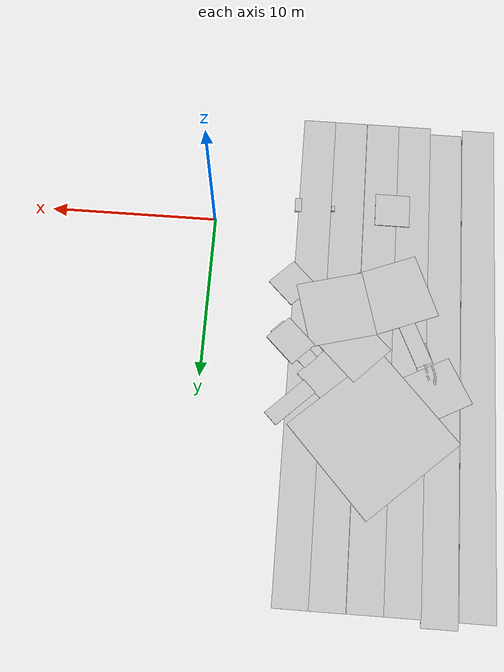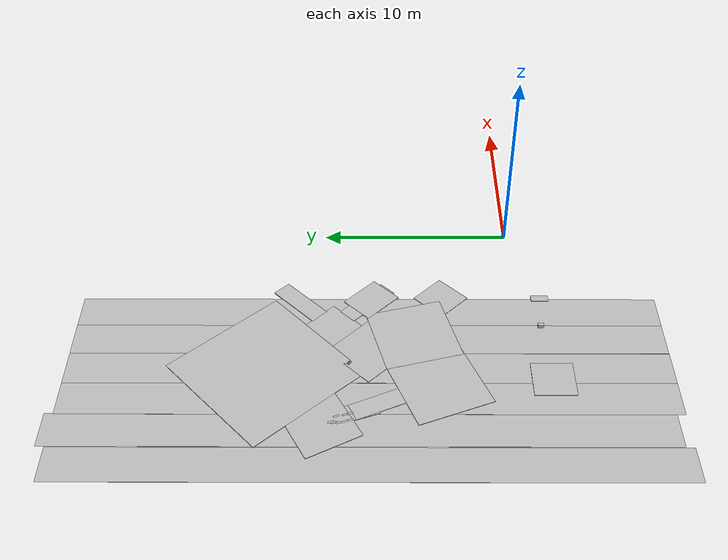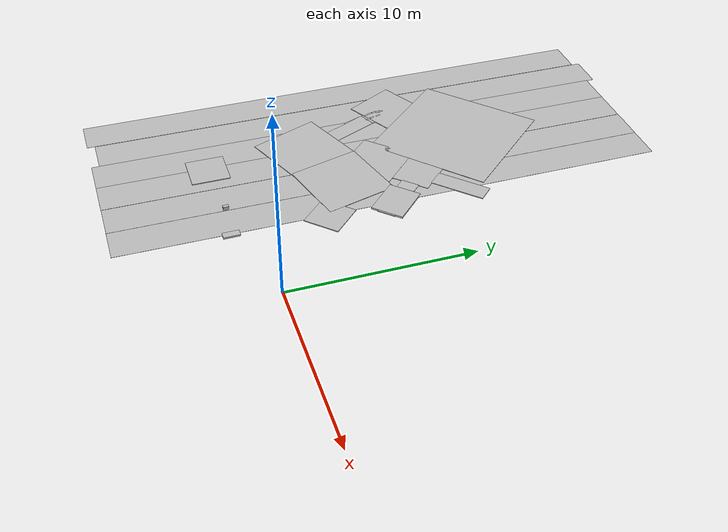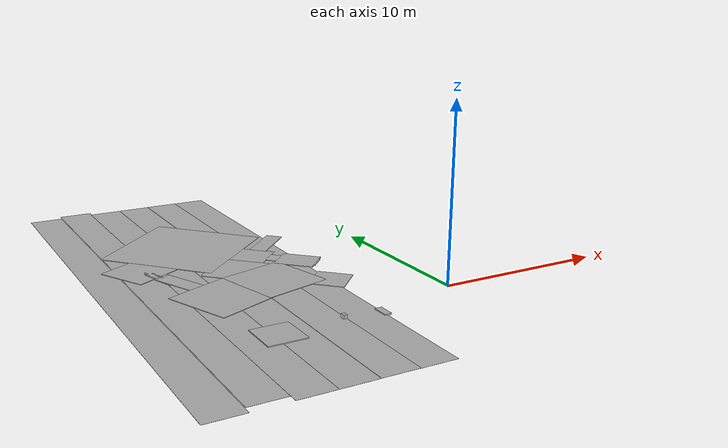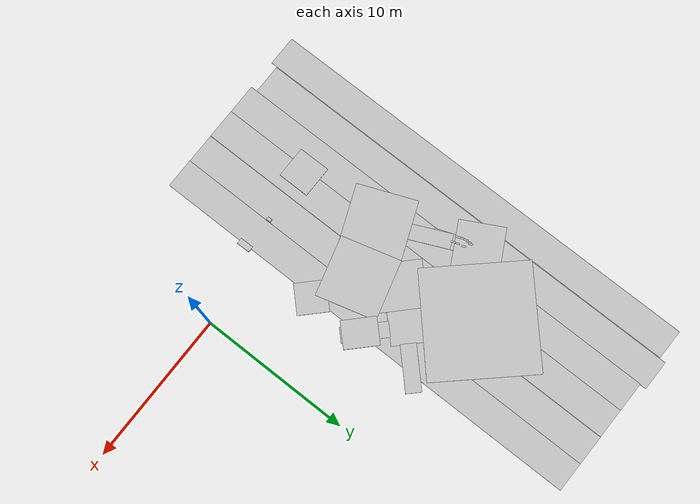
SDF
<sdf version="1.6">
 <world name="default">
  <model name="stop_crossing">
   <static>1</static>
   <link name="link">
    <collision name="collision">
     <geometry><box><size>2.1 2.1 0.05</size></box></geometry>
     <surface><friction><ode><mu>100</mu><mu2>50</mu2></ode></friction></surface>
    </collision>
    <visual name="visual">
     <cast_shadows>0</cast_shadows>
     <geometry><box><size>2.1 2.1 0.05</size></box></geometry>
     <material>
      <script>
       <uri>model://stop_crossing/materials/scripts</uri>
       <uri>model://stop_crossing/materials/textures/</uri>
       <name>stop_crossing/Image</name>
      </script>
     </material>
    </visual>
   </link>
   <pose>-7.10184 9.42657 0 0 -0 0.789918</pose>
  </model>
  <model name="straight_300_o_25">
   <static>1</static>
   <link name="link">
    <collision name="collision">
     <geometry><box><size>3 1 0.05</size></box></geometry>
     <surface><friction><ode><mu>100</mu><mu2>50</mu2></ode></friction></surface>
    </collision>
    <visual name="visual">
     <cast_shadows>0</cast_shadows>
     <geometry><box><size>3 1 0.05</size></box></geometry>
     <material>
      <script>
       <uri>model://straight_300_o_25/materials/scripts</uri>
       <uri>model://straight_300_o_25/materials/textures/</uri>
       <name>straight_300_o_25/Image</name>
      </script>
     </material>
    </visual>
   </link>
   <pose>-5.32382 11.1876 0.001 0 -0 0.774294</pose>
  </model>
  <model name="straight_300_o_25_0">
   <static>1</static>
   <link name="link">
    <collision name="collision">
     <geometry><box><size>3 1 0.05</size></box></geometry>
     <surface><friction><ode><mu>100</mu><mu2>50</mu2></ode></friction></surface>
    </collision>
    <visual name="visual">
     <cast_shadows>0</cast_shadows>
     <geometry><box><size>3 1 0.05</size></box></geometry>
     <material>
      <script>
       <uri>model://straight_300_o_25/materials/scripts</uri>
       <uri>model://straight_300_o_25/materials/textures/</uri>
       <name>straight_300_o_25/Image</name>
      </script>
     </material>
    </visual>
   </link>
   <pose>-5.32432 7.66399 0.00145 0 0 -0.781825</pose>
  </model>
  <model name="left_curve_r100_a75_025">
   <static>1</static>
   <link name="link">
    <collision name="collision">
     <geometry><box><size>2 2 0.05</size></box></geometry>
     <surface><friction><ode><mu>100</mu><mu2>50</mu2></ode></friction></surface>
    </collision>
    <visual name="visual">
     <cast_shadows>0</cast_shadows>
     <geometry><box><size>2 2 0.05</size></box></geometry>
     <material>
      <script>
       <uri>model://left_curve_r100_a75_025/materials/scripts</uri>
       <uri>model://left_curve_r100_a75_025/materials/textures/</uri>
       <name>left_curve_r100_a75_025/Image</name>
      </script>
     </material>
    </visual>
   </link>
   <pose>-4.99373 3.81358 0 0 0 -0.782313</pose>
  </model>
  <model name="left_curve_r150_a60_020">
   <static>1</static>
   <link name="link">
    <collision name="collision">
     <geometry><box><size>3 3 0.05</size></box></geometry>
     <surface><friction><ode><mu>100</mu><mu2>50</mu2></ode></friction></surface>
    </collision>
    <visual name="visual">
     <cast_shadows>0</cast_shadows>
     <geometry><box><size>3 3 0.05</size></box></geometry>
     <material>
      <script>
       <uri>model://left_curve_r150_a60_020/materials/scripts</uri>
       <uri>model://left_curve_r150_a60_020/materials/textures/</uri>
       <name>left_curve_r150_a60_020/Image</name>
      </script>
     </material>
    </visual>
   </link>
   <pose>-8.89192 7.61762 0.001 0 0 -0.779843</pose>
  </model>
  <model name="right_curve_r200_a90_o20">
   <static>1</static>
   <link name="link">
    <collision name="collision">
     <geometry><box><size>4 4 0.05</size></box></geometry>
     <surface><friction><ode><mu>100</mu><mu2>50</mu2></ode></friction></surface>
    </collision>
    <visual name="visual">
     <cast_shadows>0</cast_shadows>
     <geometry><box><size>4 4 0.05</size></box></geometry>
     <material>
      <script>
       <uri>model://right_curve_r200_a90_o20/materials/scripts</uri>
       <uri>model://right_curve_r200_a90_o20/materials/textures/</uri>
       <name>right_curve_r200_a90_o20/Image</name>
      </script>
     </material>
    </visual>
   </link>
   <pose>-7.6945 5.3036 0.002 0 -0 1.83523</pose>
  </model>
  <model name="right_curve_r200_a90_o20_0">
   <static>1</static>
   <link name="link">
    <collision name="collision">
     <geometry><box><size>4 4 0.05</size></box></geometry>
     <surface><friction><ode><mu>100</mu><mu2>50</mu2></ode></friction></surface>
    </collision>
    <visual name="visual">
     <cast_shadows>0</cast_shadows>
     <geometry><box><size>4 4 0.05</size></box></geometry>
     <material>
      <script>
       <uri>model://right_curve_r200_a90_o20/materials/scripts</uri>
       <uri>model://right_curve_r200_a90_o20/materials/textures/</uri>
       <name>right_curve_r200_a90_o20/Image</name>
      </script>
     </material>
    </visual>
   </link>
   <pose>-11.1447 4.13942 0.001 0 -0 0.381381</pose>
  </model>
  <model name="right_curve_r150_a90_o30_0">
   <static>1</static>
   <link name="link">
    <collision name="collision">
     <geometry><box><size>3 3 0.05</size></box></geometry>
     <surface><friction><ode><mu>100</mu><mu2>50</mu2></ode></friction></surface>
    </collision>
    <visual name="visual">
     <cast_shadows>0</cast_shadows>
     <geometry><box><size>3 3 0.05</size></box></geometry>
     <material>
      <script>
       <uri>model://right_curve_r150_a90_o30/materials/scripts</uri>
       <uri>model://right_curve_r150_a90_o30/materials/textures/</uri>
       <name>right_curve_r150_a90_o30/Image</name>
      </script>
     </material>
    </visual>
   </link>
   <pose>-13.7237 9.88072 0 0 0 -1.08295</pose>
  </model>
  <model name="straight_300_o_25_2">
   <static>1</static>
   <link name="link">
    <collision name="collision">
     <geometry><box><size>3 1 0.05</size></box></geometry>
     <surface><friction><ode><mu>100</mu><mu2>50</mu2></ode></friction></surface>
    </collision>
    <visual name="visual">
     <cast_shadows>0</cast_shadows>
     <geometry><box><size>3 1 0.05</size></box></geometry>
     <material>
      <script>
       <uri>model://straight_300_o_25/materials/scripts</uri>
       <uri>model://straight_300_o_25/materials/textures/</uri>
       <name>straight_300_o_25/Image</name>
      </script>
     </material>
    </visual>
   </link>
   <pose>-12.3535 7.02768 -0.001 0 -0 1.99398</pose>
  </model>
  <model name="right_curve_r350_a90_o20">
   <static>1</static>
   <link name="link">
    <collision name="collision">
     <geometry><box><size>7 7 0.05</size></box></geometry>
     <surface><friction><ode><mu>100</mu><mu2>50</mu2></ode></friction></surface>
    </collision>
    <visual name="visual">
     <cast_shadows>0</cast_shadows>
     <geometry><box><size>7 7 0.05</size></box></geometry>
     <material>
      <script>
       <uri>model://right_curve_r350_a90_o20/materials/scripts</uri>
       <uri>model://right_curve_r350_a90_o20/materials/textures/</uri>
       <name>right_curve_r350_a90_o20/Image</name>
      </script>
     </material>
    </visual>
   </link>
   <pose>-10.1542 12.6944 0.001 0 0 -2.40206</pose>
  </model>
  <model name="straight_300_o_25_3">
   <static>1</static>
   <link name="link">
    <collision name="collision">
     <geometry><box><size>3 1 0.05</size></box></geometry>
     <surface><friction><ode><mu>100</mu><mu2>50</mu2></ode></friction></surface>
    </collision>
    <visual name="visual">
     <cast_shadows>0</cast_shadows>
     <geometry><box><size>3 1 0.05</size></box></geometry>
     <material>
      <script>
       <uri>model://straight_300_o_25/materials/scripts</uri>
       <uri>model://straight_300_o_25/materials/textures/</uri>
       <name>straight_300_o_25/Image</name>
      </script>
     </material>
    </visual>
   </link>
   <pose>-13.0463 8.61101 -0.002 0 -0 1.92031</pose>
  </model>
  <model name="black_tile_w200_h3000_3">
   <static>1</static>
   <link name="link">
    <collision name="collision">
     <geometry><box><size>2 30 0.01</size></box></geometry>
     <surface><friction><ode><mu>100</mu><mu2>50</mu2></ode></friction></surface>
    </collision>
    <visual name="visual">
     <cast_shadows>0</cast_shadows>
     <geometry><box><size>2 30 0.01</size></box></geometry>
     <material>
      <script>
       <uri>model://black_tile_w200_h3000/materials/scripts</uri>
       <uri>model://black_tile_w200_h3000/materials/textures/</uri>
       <name>black_tile_w200_h3000/Image</name>
      </script>
     </material>
    </visual>
   </link>
   <pose>-6.05699 7.57177 -0.006667 0 -0 0</pose>
  </model>
  <model name="black_tile_w200_h3000_4">
   <static>1</static>
   <link name="link">
    <collision name="collision">
     <geometry><box><size>2 30 0.01</size></box></geometry>
     <surface><friction><ode><mu>100</mu><mu2>50</mu2></ode></friction></surface>
    </collision>
    <visual name="visual">
     <cast_shadows>0</cast_shadows>
     <geometry><box><size>2 30 0.01</size></box></geometry>
     <material>
      <script>
       <uri>model://black_tile_w200_h3000/materials/scripts</uri>
       <uri>model://black_tile_w200_h3000/materials/textures/</uri>
       <name>black_tile_w200_h3000/Image</name>
      </script>
     </material>
    </visual>
   </link>
   <pose>-8.03771 7.57875 -0.003333 0 -0 0</pose>
  </model>
  <model name="black_tile_w200_h3000_5">
   <static>1</static>
   <link name="link">
    <collision name="collision">
     <geometry><box><size>2 30 0.01</size></box></geometry>
     <surface><friction><ode><mu>100</mu><mu2>50</mu2></ode></friction></surface>
    </collision>
    <visual name="visual">
     <cast_shadows>0</cast_shadows>
     <geometry><box><size>2 30 0.01</size></box></geometry>
     <material>
      <script>
       <uri>model://black_tile_w200_h3000/materials/scripts</uri>
       <uri>model://black_tile_w200_h3000/materials/textures/</uri>
       <name>black_tile_w200_h3000/Image</name>
      </script>
     </material>
    </visual>
   </link>
   <pose>-10.057 7.57177 -0.006667 0 -0 0</pose>
  </model>
  <model name="black_tile_w200_h3000_6">
   <static>1</static>
   <link name="link">
    <collision name="collision">
     <geometry><box><size>2 30 0.01</size></box></geometry>
     <surface><friction><ode><mu>100</mu><mu2>50</mu2></ode></friction></surface>
    </collision>
    <visual name="visual">
     <cast_shadows>0</cast_shadows>
     <geometry><box><size>2 30 0.01</size></box></geometry>
     <material>
      <script>
       <uri>model://black_tile_w200_h3000/materials/scripts</uri>
       <uri>model://black_tile_w200_h3000/materials/textures/</uri>
       <name>black_tile_w200_h3000/Image</name>
      </script>
     </material>
    </visual>
   </link>
   <pose>-12.057 7.57177 -0.01 0 -0 0</pose>
  </model>
  <model name="black_tile_w200_h3000_7">
   <static>1</static>
   <link name="link">
    <collision name="collision">
     <geometry><box><size>2 30 0.01</size></box></geometry>
     <surface><friction><ode><mu>100</mu><mu2>50</mu2></ode></friction></surface>
    </collision>
    <visual name="visual">
     <cast_shadows>0</cast_shadows>
     <geometry><box><size>2 30 0.01</size></box></geometry>
     <material>
      <script>
       <uri>model://black_tile_w200_h3000/materials/scripts</uri>
       <uri>model://black_tile_w200_h3000/materials/textures/</uri>
       <name>black_tile_w200_h3000/Image</name>
      </script>
     </material>
    </visual>
   </link>
   <pose>-14.018 7.99836 -0.013333 0 -0 0</pose>
  </model>
  <model name="black_tile_w200_h3000_8">
   <static>1</static>
   <link name="link">
    <collision name="collision">
     <geometry><box><size>2 30 0.01</size></box></geometry>
     <surface><friction><ode><mu>100</mu><mu2>50</mu2></ode></friction></surface>
    </collision>
    <visual name="visual">
     <cast_shadows>0</cast_shadows>
     <geometry><box><size>2 30 0.01</size></box></geometry>
     <material>
      <script>
       <uri>model://black_tile_w200_h3000/materials/scripts</uri>
       <uri>model://black_tile_w200_h3000/materials/textures/</uri>
       <name>black_tile_w200_h3000/Image</name>
      </script>
     </material>
    </visual>
   </link>
   <pose>-16.057 7.57177 -0.016667 0 -0 0</pose>
  </model>
  <model name="line_remove_3">
   <static>1</static>
   <link name="link">
    <collision name="collision">
     <geometry><box><size>0.1 0.3 0.01</size></box></geometry>
     <surface><friction><ode><mu>100</mu><mu2>50</mu2></ode></friction></surface>
    </collision>
    <visual name="visual">
     <cast_shadows>0</cast_shadows>
     <geometry><box><size>0.1 0.3 0.01</size></box></geometry>
     <material>
      <script>
       <uri>model://line_remove/materials/scripts</uri>
       <uri>model://line_remove/materials/textures/</uri>
       <name>line_remove/Image</name>
      </script>
     </material>
    </visual>
   </link>
   <pose>-13.0898 8.72684 0.021036 0 -0 0.359211</pose>
  </model>
  <model name="line_remove_4">
   <static>1</static>
   <link name="link">
    <collision name="collision">
     <geometry><box><size>0.1 0.3 0.01</size></box></geometry>
     <surface><friction><ode><mu>100</mu><mu2>50</mu2></ode></friction></surface>
    </collision>
    <visual name="visual">
     <cast_shadows>0</cast_shadows>
     <geometry><box><size>0.1 0.3 0.01</size></box></geometry>
     <material>
      <script>
       <uri>model://line_remove/materials/scripts</uri>
       <uri>model://line_remove/materials/textures/</uri>
       <name>line_remove/Image</name>
      </script>
     </material>
    </visual>
   </link>
   <pose>-13.1913 9.13982 0.021036 0 -0 0.359211</pose>
  </model>
  <model name="line_remove_5">
   <static>1</static>
   <link name="link">
    <collision name="collision">
     <geometry><box><size>0.1 0.3 0.01</size></box></geometry>
     <surface><friction><ode><mu>100</mu><mu2>50</mu2></ode></friction></surface>
    </collision>
    <visual name="visual">
     <cast_shadows>0</cast_shadows>
     <geometry><box><size>0.1 0.3 0.01</size></box></geometry>
     <material>
      <script>
       <uri>model://line_remove/materials/scripts</uri>
       <uri>model://line_remove/materials/textures/</uri>
       <name>line_remove/Image</name>
      </script>
     </material>
    </visual>
   </link>
   <pose>-13.0151 8.47972 0.021036 0 -0 0.359211</pose>
  </model>
  <model name="line_remove_6">
   <static>1</static>
   <link name="link">
    <collision name="collision">
     <geometry><box><size>0.1 0.3 0.01</size></box></geometry>
     <surface><friction><ode><mu>100</mu><mu2>50</mu2></ode></friction></surface>
    </collision>
    <visual name="visual">
     <cast_shadows>0</cast_shadows>
     <geometry><box><size>0.1 0.3 0.01</size></box></geometry>
     <material>
      <script>
       <uri>model://line_remove/materials/scripts</uri>
       <uri>model://line_remove/materials/textures/</uri>
       <name>line_remove/Image</name>
      </script>
     </material>
    </visual>
   </link>
   <pose>-13.4228 8.48987 0.021036 0 -0 0.359211</pose>
  </model>
  <model name="line_remove_7">
   <static>1</static>
   <link name="link">
    <collision name="collision">
     <geometry><box><size>0.1 0.3 0.01</size></box></geometry>
     <surface><friction><ode><mu>100</mu><mu2>50</mu2></ode></friction></surface>
    </collision>
    <visual name="visual">
     <cast_shadows>0</cast_shadows>
     <geometry><box><size>0.1 0.3 0.01</size></box></geometry>
     <material>
      <script>
       <uri>model://line_remove/materials/scripts</uri>
       <uri>model://line_remove/materials/textures/</uri>
       <name>line_remove/Image</name>
      </script>
     </material>
    </visual>
   </link>
   <pose>-13.5211 8.73612 0.021036 0 -0 0.359211</pose>
  </model>
  <model name="line_remove_8">
   <static>1</static>
   <link name="link">
    <collision name="collision">
     <geometry><box><size>0.1 0.3 0.01</size></box></geometry>
     <surface><friction><ode><mu>100</mu><mu2>50</mu2></ode></friction></surface>
    </collision>
    <visual name="visual">
     <cast_shadows>0</cast_shadows>
     <geometry><box><size>0.1 0.3 0.01</size></box></geometry>
     <material>
      <script>
       <uri>model://line_remove/materials/scripts</uri>
       <uri>model://line_remove/materials/textures/</uri>
       <name>line_remove/Image</name>
      </script>
     </material>
    </visual>
   </link>
   <pose>-13.5882 9.00976 0.021036 0 -0 0.359211</pose>
  </model>
  <model name="line_remove_9">
   <static>1</static>
   <link name="link">
    <collision name="collision">
     <geometry><box><size>0.1 0.3 0.01</size></box></geometry>
     <surface><friction><ode><mu>100</mu><mu2>50</mu2></ode></friction></surface>
    </collision>
    <visual name="visual">
     <cast_shadows>0</cast_shadows>
     <geometry><box><size>0.1 0.3 0.01</size></box></geometry>
     <material>
      <script>
       <uri>model://line_remove/materials/scripts</uri>
       <uri>model://line_remove/materials/textures/</uri>
       <name>line_remove/Image</name>
      </script>
     </material>
    </visual>
   </link>
   <pose>-13.5859 9.2475 0.021036 0 -0 0.359211</pose>
  </model>
  <model name="line_remove_10">
   <static>1</static>
   <link name="link">
    <collision name="collision">
     <geometry><box><size>0.1 0.3 0.01</size></box></geometry>
     <surface><friction><ode><mu>100</mu><mu2>50</mu2></ode></friction></surface>
    </collision>
    <visual name="visual">
     <cast_shadows>0</cast_shadows>
     <geometry><box><size>0.1 0.3 0.01</size></box></geometry>
     <material>
      <script>
       <uri>model://line_remove/materials/scripts</uri>
       <uri>model://line_remove/materials/textures/</uri>
       <name>line_remove/Image</name>
      </script>
     </material>
    </visual>
   </link>
   <pose>-13.5552 9.38927 0.021036 0 -0 0.359211</pose>
  </model>
  <model name="box_l300_w200_h200_0">
   <static>1</static>
   <link name="link">
    <collision name="collision">
     <geometry><box><size>0.3 0.2 0.2</size></box></geometry>
     <surface><friction><ode><mu>100</mu><mu2>50</mu2></ode></friction></surface>
    </collision>
    <visual name="visual">
     <cast_shadows>0</cast_shadows>
     <geometry><box><size>0.3 0.2 0.2</size></box></geometry>
     <material>
      <script>
       <uri>model://box_l300_w200_h200/materials/scripts</uri>
       <uri>model://box_l300_w200_h200/materials/textures/</uri>
       <name>box_l300_w200_h200/Image</name>
      </script>
     </material>
    </visual>
   </link>
   <pose>-7.1514 -1.20941 0.125381 0 0 -1.54544</pose>
  </model>
  <model name="crosswalk_box">
   <static>1</static>
   <link name="link">
    <collision name="collision">
     <geometry><box><size>0.4 0.9 0.1</size></box></geometry>
     <surface><friction><ode><mu>100</mu><mu2>50</mu2></ode></friction></surface>
    </collision>
    <visual name="visual">
     <cast_shadows>0</cast_shadows>
     <geometry><box><size>0.4 0.9 0.1</size></box></geometry>
     <material>
      <script>
       <uri>model://crosswalk_box/materials/scripts</uri>
       <uri>model://crosswalk_box/materials/textures/</uri>
       <name>crosswalk_box/Image</name>
      </script>
     </material>
    </visual>
   </link>
   <pose>-5.01997 -1.38949 0.00314 0 -0 0.013186</pose>
  </model>
  <model name="island_no_crossing_gimp">
   <static>1</static>
   <link name="link">
    <collision name="collision">
     <geometry><box><size>2.25 1.8 0.1</size></box></geometry>
     <surface><friction><ode><mu>100</mu><mu2>50</mu2></ode></friction></surface>
    </collision>
    <visual name="visual">
     <cast_shadows>0</cast_shadows>
     <geometry><box><size>2.25 1.8 0.1</size></box></geometry>
     <material>
      <script>
       <uri>model://island_no_crossing_gimp/materials/scripts</uri>
       <uri>model://island_no_crossing_gimp/materials/textures/</uri>
       <name>island_no_crossing_gimp/Image</name>
      </script>
     </material>
    </visual>
   </link>
   <pose>-5.11971 7.4661 -0.02145 0 0 -0.778963</pose>
  </model>
  <model name="stop_crossing_0">
   <static>1</static>
   <link name="link">
    <collision name="collision">
     <geometry><box><size>2.1 2.1 0.05</size></box></geometry>
     <surface><friction><ode><mu>100</mu><mu2>50</mu2></ode></friction></surface>
    </collision>
    <visual name="visual">
     <cast_shadows>0</cast_shadows>
     <geometry><box><size>2.1 2.1 0.05</size></box></geometry>
     <material>
      <script>
       <uri>model://stop_crossing/materials/scripts</uri>
       <uri>model://stop_crossing/materials/textures/</uri>
       <name>stop_crossing/Image</name>
      </script>
     </material>
    </visual>
   </link>
   <pose>-10.8056 -1.43321 0.026764 0 -0 0</pose>
  </model>
 </world>
</sdf>
